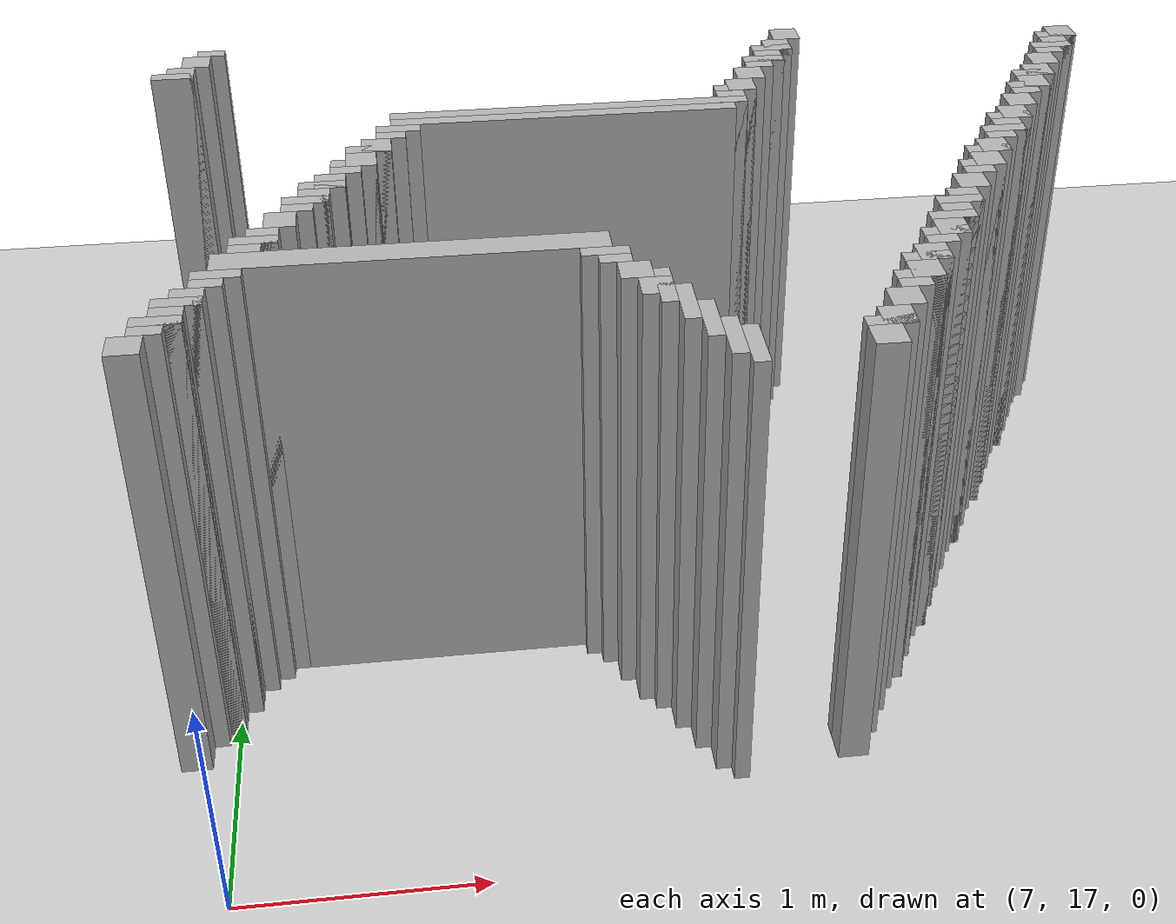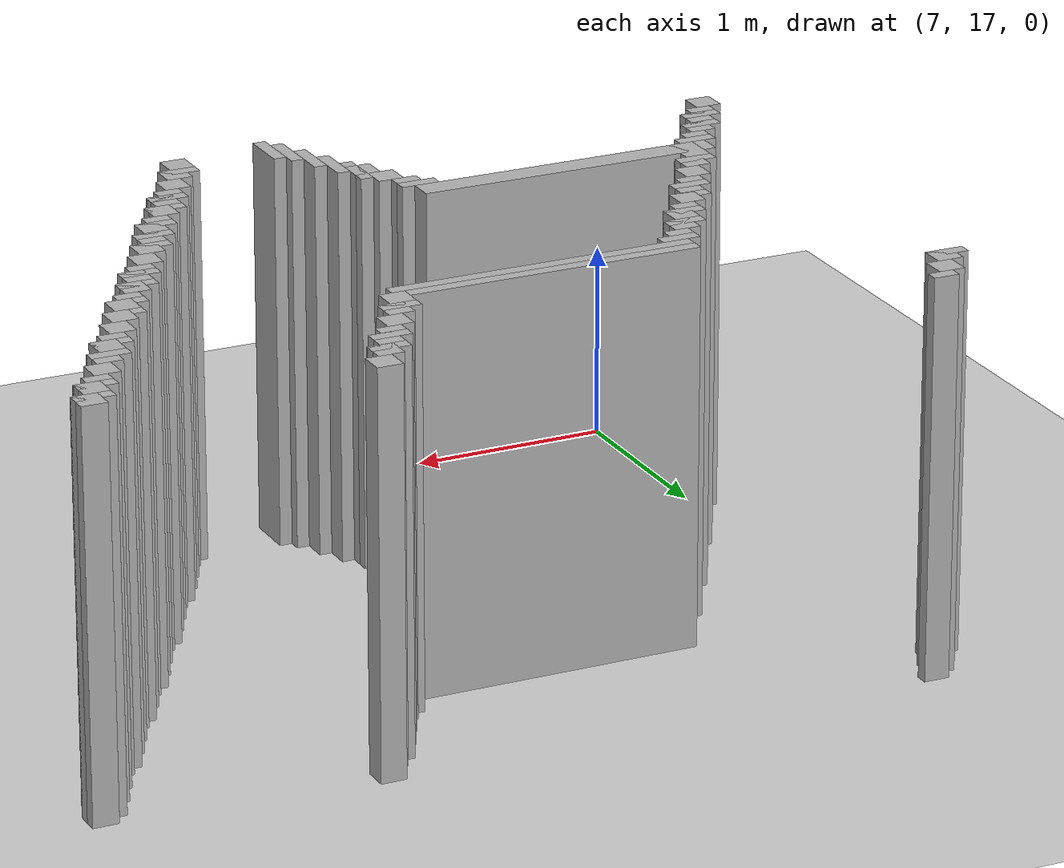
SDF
<sdf version="1.6">
 <world name="slam_world">
  <model name="ground_plane">
   <static>true</static>
   <link name="link">
    <collision name="collision">
     <geometry><plane><normal>0 0 1</normal><size>100 100</size></plane></geometry>
    </collision>
    <visual name="visual">
     <geometry><plane><normal>0 0 1</normal><size>100 100</size></plane></geometry>
     <material>
      <ambient>0.8 0.8 0.8 1</ambient>
      <diffuse>0.8 0.8 0.8 1</diffuse>
      <specular>0.8 0.8 0.8 1</specular>
     </material>
    </visual>
   </link>
  </model>
  <model name="wall_358">
   <static>true</static>
   <pose>6.957446808510638 20.457446808510635 1.0 0 0 0</pose>
   <link name="link">
    <collision name="collision">
     <geometry><box><size>0.1276595744680851 0.06382978723404255 2.0</size></box></geometry>
    </collision>
    <visual name="visual">
     <geometry><box><size>0.1276595744680851 0.06382978723404255 2.0</size></box></geometry>
     <material><ambient>0.5 0.5 0.5 1</ambient><diffuse>0.7 0.7 0.7 1</diffuse></material>
    </visual>
   </link>
  </model>
  <model name="wall_364">
   <static>true</static>
   <pose>6.8936170212765955 20.361702127659573 1.0 0 0 0</pose>
   <link name="link">
    <collision name="collision">
     <geometry><box><size>0.1276595744680851 0.1276595744680851 2.0</size></box></geometry>
    </collision>
    <visual name="visual">
     <geometry><box><size>0.1276595744680851 0.1276595744680851 2.0</size></box></geometry>
     <material><ambient>0.5 0.5 0.5 1</ambient><diffuse>0.7 0.7 0.7 1</diffuse></material>
    </visual>
   </link>
  </model>
  <model name="wall_365">
   <static>true</static>
   <pose>9.702127659574467 20.361702127659573 1.0 0 0 0</pose>
   <link name="link">
    <collision name="collision">
     <geometry><box><size>0.1276595744680851 0.1276595744680851 2.0</size></box></geometry>
    </collision>
    <visual name="visual">
     <geometry><box><size>0.1276595744680851 0.1276595744680851 2.0</size></box></geometry>
     <material><ambient>0.5 0.5 0.5 1</ambient><diffuse>0.7 0.7 0.7 1</diffuse></material>
    </visual>
   </link>
  </model>
  <model name="wall_372">
   <static>true</static>
   <pose>6.829787234042553 20.234042553191486 1.0 0 0 0</pose>
   <link name="link">
    <collision name="collision">
     <geometry><box><size>0.1276595744680851 0.1276595744680851 2.0</size></box></geometry>
    </collision>
    <visual name="visual">
     <geometry><box><size>0.1276595744680851 0.1276595744680851 2.0</size></box></geometry>
     <material><ambient>0.5 0.5 0.5 1</ambient><diffuse>0.7 0.7 0.7 1</diffuse></material>
    </visual>
   </link>
  </model>
  <model name="wall_373">
   <static>true</static>
   <pose>9.638297872340425 20.234042553191486 1.0 0 0 0</pose>
   <link name="link">
    <collision name="collision">
     <geometry><box><size>0.1276595744680851 0.1276595744680851 2.0</size></box></geometry>
    </collision>
    <visual name="visual">
     <geometry><box><size>0.1276595744680851 0.1276595744680851 2.0</size></box></geometry>
     <material><ambient>0.5 0.5 0.5 1</ambient><diffuse>0.7 0.7 0.7 1</diffuse></material>
    </visual>
   </link>
  </model>
  <model name="wall_374">
   <static>true</static>
   <pose>11.042553191489361 20.234042553191486 1.0 0 0 0</pose>
   <link name="link">
    <collision name="collision">
     <geometry><box><size>0.1276595744680851 0.1276595744680851 2.0</size></box></geometry>
    </collision>
    <visual name="visual">
     <geometry><box><size>0.1276595744680851 0.1276595744680851 2.0</size></box></geometry>
     <material><ambient>0.5 0.5 0.5 1</ambient><diffuse>0.7 0.7 0.7 1</diffuse></material>
    </visual>
   </link>
  </model>
  <model name="wall_380">
   <static>true</static>
   <pose>6.797872340425531 20.202127659574465 1.0 0 0 0</pose>
   <link name="link">
    <collision name="collision">
     <geometry><box><size>0.19148936170212766 0.06382978723404255 2.0</size></box></geometry>
    </collision>
    <visual name="visual">
     <geometry><box><size>0.19148936170212766 0.06382978723404255 2.0</size></box></geometry>
     <material><ambient>0.5 0.5 0.5 1</ambient><diffuse>0.7 0.7 0.7 1</diffuse></material>
    </visual>
   </link>
  </model>
  <model name="wall_381">
   <static>true</static>
   <pose>9.606382978723403 20.202127659574465 1.0 0 0 0</pose>
   <link name="link">
    <collision name="collision">
     <geometry><box><size>0.19148936170212766 0.06382978723404255 2.0</size></box></geometry>
    </collision>
    <visual name="visual">
     <geometry><box><size>0.19148936170212766 0.06382978723404255 2.0</size></box></geometry>
     <material><ambient>0.5 0.5 0.5 1</ambient><diffuse>0.7 0.7 0.7 1</diffuse></material>
    </visual>
   </link>
  </model>
  <model name="wall_382">
   <static>true</static>
   <pose>11.01063829787234 20.202127659574465 1.0 0 0 0</pose>
   <link name="link">
    <collision name="collision">
     <geometry><box><size>0.19148936170212766 0.06382978723404255 2.0</size></box></geometry>
    </collision>
    <visual name="visual">
     <geometry><box><size>0.19148936170212766 0.06382978723404255 2.0</size></box></geometry>
     <material><ambient>0.5 0.5 0.5 1</ambient><diffuse>0.7 0.7 0.7 1</diffuse></material>
    </visual>
   </link>
  </model>
  <model name="wall_387">
   <static>true</static>
   <pose>9.574468085106382 20.106382978723403 1.0 0 0 0</pose>
   <link name="link">
    <collision name="collision">
     <geometry><box><size>0.1276595744680851 0.1276595744680851 2.0</size></box></geometry>
    </collision>
    <visual name="visual">
     <geometry><box><size>0.1276595744680851 0.1276595744680851 2.0</size></box></geometry>
     <material><ambient>0.5 0.5 0.5 1</ambient><diffuse>0.7 0.7 0.7 1</diffuse></material>
    </visual>
   </link>
  </model>
  <model name="wall_388">
   <static>true</static>
   <pose>10.978723404255318 20.106382978723403 1.0 0 0 0</pose>
   <link name="link">
    <collision name="collision">
     <geometry><box><size>0.1276595744680851 0.1276595744680851 2.0</size></box></geometry>
    </collision>
    <visual name="visual">
     <geometry><box><size>0.1276595744680851 0.1276595744680851 2.0</size></box></geometry>
     <material><ambient>0.5 0.5 0.5 1</ambient><diffuse>0.7 0.7 0.7 1</diffuse></material>
    </visual>
   </link>
  </model>
  <model name="wall_393">
   <static>true</static>
   <pose>9.542553191489361 20.074468085106382 1.0 0 0 0</pose>
   <link name="link">
    <collision name="collision">
     <geometry><box><size>0.19148936170212766 0.06382978723404255 2.0</size></box></geometry>
    </collision>
    <visual name="visual">
     <geometry><box><size>0.19148936170212766 0.06382978723404255 2.0</size></box></geometry>
     <material><ambient>0.5 0.5 0.5 1</ambient><diffuse>0.7 0.7 0.7 1</diffuse></material>
    </visual>
   </link>
  </model>
  <model name="wall_394">
   <static>true</static>
   <pose>10.946808510638297 20.074468085106382 1.0 0 0 0</pose>
   <link name="link">
    <collision name="collision">
     <geometry><box><size>0.19148936170212766 0.06382978723404255 2.0</size></box></geometry>
    </collision>
    <visual name="visual">
     <geometry><box><size>0.19148936170212766 0.06382978723404255 2.0</size></box></geometry>
     <material><ambient>0.5 0.5 0.5 1</ambient><diffuse>0.7 0.7 0.7 1</diffuse></material>
    </visual>
   </link>
  </model>
  <model name="wall_399">
   <static>true</static>
   <pose>9.51063829787234 20.01063829787234 1.0 0 0 0</pose>
   <link name="link">
    <collision name="collision">
     <geometry><box><size>0.1276595744680851 0.06382978723404255 2.0</size></box></geometry>
    </collision>
    <visual name="visual">
     <geometry><box><size>0.1276595744680851 0.06382978723404255 2.0</size></box></geometry>
     <material><ambient>0.5 0.5 0.5 1</ambient><diffuse>0.7 0.7 0.7 1</diffuse></material>
    </visual>
   </link>
  </model>
  <model name="wall_400">
   <static>true</static>
   <pose>10.914893617021276 20.01063829787234 1.0 0 0 0</pose>
   <link name="link">
    <collision name="collision">
     <geometry><box><size>0.1276595744680851 0.06382978723404255 2.0</size></box></geometry>
    </collision>
    <visual name="visual">
     <geometry><box><size>0.1276595744680851 0.06382978723404255 2.0</size></box></geometry>
     <material><ambient>0.5 0.5 0.5 1</ambient><diffuse>0.7 0.7 0.7 1</diffuse></material>
    </visual>
   </link>
  </model>
  <model name="wall_405">
   <static>true</static>
   <pose>9.446808510638297 19.914893617021274 1.0 0 0 0</pose>
   <link name="link">
    <collision name="collision">
     <geometry><box><size>0.1276595744680851 0.1276595744680851 2.0</size></box></geometry>
    </collision>
    <visual name="visual">
     <geometry><box><size>0.1276595744680851 0.1276595744680851 2.0</size></box></geometry>
     <material><ambient>0.5 0.5 0.5 1</ambient><diffuse>0.7 0.7 0.7 1</diffuse></material>
    </visual>
   </link>
  </model>
  <model name="wall_406">
   <static>true</static>
   <pose>10.851063829787233 19.914893617021274 1.0 0 0 0</pose>
   <link name="link">
    <collision name="collision">
     <geometry><box><size>0.1276595744680851 0.1276595744680851 2.0</size></box></geometry>
    </collision>
    <visual name="visual">
     <geometry><box><size>0.1276595744680851 0.1276595744680851 2.0</size></box></geometry>
     <material><ambient>0.5 0.5 0.5 1</ambient><diffuse>0.7 0.7 0.7 1</diffuse></material>
    </visual>
   </link>
  </model>
  <model name="wall_413">
   <static>true</static>
   <pose>9.382978723404255 19.78723404255319 1.0 0 0 0</pose>
   <link name="link">
    <collision name="collision">
     <geometry><box><size>0.1276595744680851 0.1276595744680851 2.0</size></box></geometry>
    </collision>
    <visual name="visual">
     <geometry><box><size>0.1276595744680851 0.1276595744680851 2.0</size></box></geometry>
     <material><ambient>0.5 0.5 0.5 1</ambient><diffuse>0.7 0.7 0.7 1</diffuse></material>
    </visual>
   </link>
  </model>
  <model name="wall_414">
   <static>true</static>
   <pose>10.787234042553191 19.78723404255319 1.0 0 0 0</pose>
   <link name="link">
    <collision name="collision">
     <geometry><box><size>0.1276595744680851 0.1276595744680851 2.0</size></box></geometry>
    </collision>
    <visual name="visual">
     <geometry><box><size>0.1276595744680851 0.1276595744680851 2.0</size></box></geometry>
     <material><ambient>0.5 0.5 0.5 1</ambient><diffuse>0.7 0.7 0.7 1</diffuse></material>
    </visual>
   </link>
  </model>
  <model name="wall_421">
   <static>true</static>
   <pose>9.351063829787233 19.75531914893617 1.0 0 0 0</pose>
   <link name="link">
    <collision name="collision">
     <geometry><box><size>0.19148936170212766 0.06382978723404255 2.0</size></box></geometry>
    </collision>
    <visual name="visual">
     <geometry><box><size>0.19148936170212766 0.06382978723404255 2.0</size></box></geometry>
     <material><ambient>0.5 0.5 0.5 1</ambient><diffuse>0.7 0.7 0.7 1</diffuse></material>
    </visual>
   </link>
  </model>
  <model name="wall_422">
   <static>true</static>
   <pose>10.75531914893617 19.75531914893617 1.0 0 0 0</pose>
   <link name="link">
    <collision name="collision">
     <geometry><box><size>0.19148936170212766 0.06382978723404255 2.0</size></box></geometry>
    </collision>
    <visual name="visual">
     <geometry><box><size>0.19148936170212766 0.06382978723404255 2.0</size></box></geometry>
     <material><ambient>0.5 0.5 0.5 1</ambient><diffuse>0.7 0.7 0.7 1</diffuse></material>
    </visual>
   </link>
  </model>
  <model name="wall_427">
   <static>true</static>
   <pose>9.319148936170212 19.659574468085104 1.0 0 0 0</pose>
   <link name="link">
    <collision name="collision">
     <geometry><box><size>0.1276595744680851 0.1276595744680851 2.0</size></box></geometry>
    </collision>
    <visual name="visual">
     <geometry><box><size>0.1276595744680851 0.1276595744680851 2.0</size></box></geometry>
     <material><ambient>0.5 0.5 0.5 1</ambient><diffuse>0.7 0.7 0.7 1</diffuse></material>
    </visual>
   </link>
  </model>
  <model name="wall_428">
   <static>true</static>
   <pose>10.723404255319148 19.659574468085104 1.0 0 0 0</pose>
   <link name="link">
    <collision name="collision">
     <geometry><box><size>0.1276595744680851 0.1276595744680851 2.0</size></box></geometry>
    </collision>
    <visual name="visual">
     <geometry><box><size>0.1276595744680851 0.1276595744680851 2.0</size></box></geometry>
     <material><ambient>0.5 0.5 0.5 1</ambient><diffuse>0.7 0.7 0.7 1</diffuse></material>
    </visual>
   </link>
  </model>
  <model name="wall_434">
   <static>true</static>
   <pose>8.585106382978722 19.627659574468083 1.0 0 0 0</pose>
   <link name="link">
    <collision name="collision">
     <geometry><box><size>1.5957446808510638 0.06382978723404255 2.0</size></box></geometry>
    </collision>
    <visual name="visual">
     <geometry><box><size>1.5957446808510638 0.06382978723404255 2.0</size></box></geometry>
     <material><ambient>0.5 0.5 0.5 1</ambient><diffuse>0.7 0.7 0.7 1</diffuse></material>
    </visual>
   </link>
  </model>
  <model name="wall_435">
   <static>true</static>
   <pose>10.691489361702127 19.627659574468083 1.0 0 0 0</pose>
   <link name="link">
    <collision name="collision">
     <geometry><box><size>0.19148936170212766 0.06382978723404255 2.0</size></box></geometry>
    </collision>
    <visual name="visual">
     <geometry><box><size>0.19148936170212766 0.06382978723404255 2.0</size></box></geometry>
     <material><ambient>0.5 0.5 0.5 1</ambient><diffuse>0.7 0.7 0.7 1</diffuse></material>
    </visual>
   </link>
  </model>
  <model name="wall_441">
   <static>true</static>
   <pose>8.553191489361701 19.56382978723404 1.0 0 0 0</pose>
   <link name="link">
    <collision name="collision">
     <geometry><box><size>1.5319148936170213 0.06382978723404255 2.0</size></box></geometry>
    </collision>
    <visual name="visual">
     <geometry><box><size>1.5319148936170213 0.06382978723404255 2.0</size></box></geometry>
     <material><ambient>0.5 0.5 0.5 1</ambient><diffuse>0.7 0.7 0.7 1</diffuse></material>
    </visual>
   </link>
  </model>
  <model name="wall_442">
   <static>true</static>
   <pose>10.659574468085106 19.56382978723404 1.0 0 0 0</pose>
   <link name="link">
    <collision name="collision">
     <geometry><box><size>0.1276595744680851 0.06382978723404255 2.0</size></box></geometry>
    </collision>
    <visual name="visual">
     <geometry><box><size>0.1276595744680851 0.06382978723404255 2.0</size></box></geometry>
     <material><ambient>0.5 0.5 0.5 1</ambient><diffuse>0.7 0.7 0.7 1</diffuse></material>
    </visual>
   </link>
  </model>
  <model name="wall_446">
   <static>true</static>
   <pose>7.819148936170212 19.5 1.0 0 0 0</pose>
   <link name="link">
    <collision name="collision">
     <geometry><box><size>0.19148936170212766 0.06382978723404255 2.0</size></box></geometry>
    </collision>
    <visual name="visual">
     <geometry><box><size>0.19148936170212766 0.06382978723404255 2.0</size></box></geometry>
     <material><ambient>0.5 0.5 0.5 1</ambient><diffuse>0.7 0.7 0.7 1</diffuse></material>
    </visual>
   </link>
  </model>
  <model name="wall_447">
   <static>true</static>
   <pose>10.595744680851062 19.468085106382976 1.0 0 0 0</pose>
   <link name="link">
    <collision name="collision">
     <geometry><box><size>0.1276595744680851 0.1276595744680851 2.0</size></box></geometry>
    </collision>
    <visual name="visual">
     <geometry><box><size>0.1276595744680851 0.1276595744680851 2.0</size></box></geometry>
     <material><ambient>0.5 0.5 0.5 1</ambient><diffuse>0.7 0.7 0.7 1</diffuse></material>
    </visual>
   </link>
  </model>
  <model name="wall_451">
   <static>true</static>
   <pose>7.787234042553191 19.436170212765955 1.0 0 0 0</pose>
   <link name="link">
    <collision name="collision">
     <geometry><box><size>0.1276595744680851 0.06382978723404255 2.0</size></box></geometry>
    </collision>
    <visual name="visual">
     <geometry><box><size>0.1276595744680851 0.06382978723404255 2.0</size></box></geometry>
     <material><ambient>0.5 0.5 0.5 1</ambient><diffuse>0.7 0.7 0.7 1</diffuse></material>
    </visual>
   </link>
  </model>
  <model name="wall_457">
   <static>true</static>
   <pose>7.723404255319148 19.340425531914892 1.0 0 0 0</pose>
   <link name="link">
    <collision name="collision">
     <geometry><box><size>0.1276595744680851 0.1276595744680851 2.0</size></box></geometry>
    </collision>
    <visual name="visual">
     <geometry><box><size>0.1276595744680851 0.1276595744680851 2.0</size></box></geometry>
     <material><ambient>0.5 0.5 0.5 1</ambient><diffuse>0.7 0.7 0.7 1</diffuse></material>
    </visual>
   </link>
  </model>
  <model name="wall_458">
   <static>true</static>
   <pose>10.53191489361702 19.340425531914892 1.0 0 0 0</pose>
   <link name="link">
    <collision name="collision">
     <geometry><box><size>0.1276595744680851 0.1276595744680851 2.0</size></box></geometry>
    </collision>
    <visual name="visual">
     <geometry><box><size>0.1276595744680851 0.1276595744680851 2.0</size></box></geometry>
     <material><ambient>0.5 0.5 0.5 1</ambient><diffuse>0.7 0.7 0.7 1</diffuse></material>
    </visual>
   </link>
  </model>
  <model name="wall_467">
   <static>true</static>
   <pose>7.691489361702127 19.30851063829787 1.0 0 0 0</pose>
   <link name="link">
    <collision name="collision">
     <geometry><box><size>0.19148936170212766 0.06382978723404255 2.0</size></box></geometry>
    </collision>
    <visual name="visual">
     <geometry><box><size>0.19148936170212766 0.06382978723404255 2.0</size></box></geometry>
     <material><ambient>0.5 0.5 0.5 1</ambient><diffuse>0.7 0.7 0.7 1</diffuse></material>
    </visual>
   </link>
  </model>
  <model name="wall_468">
   <static>true</static>
   <pose>10.5 19.30851063829787 1.0 0 0 0</pose>
   <link name="link">
    <collision name="collision">
     <geometry><box><size>0.19148936170212766 0.06382978723404255 2.0</size></box></geometry>
    </collision>
    <visual name="visual">
     <geometry><box><size>0.19148936170212766 0.06382978723404255 2.0</size></box></geometry>
     <material><ambient>0.5 0.5 0.5 1</ambient><diffuse>0.7 0.7 0.7 1</diffuse></material>
    </visual>
   </link>
  </model>
  <model name="wall_477">
   <static>true</static>
   <pose>7.659574468085106 19.212765957446805 1.0 0 0 0</pose>
   <link name="link">
    <collision name="collision">
     <geometry><box><size>0.1276595744680851 0.1276595744680851 2.0</size></box></geometry>
    </collision>
    <visual name="visual">
     <geometry><box><size>0.1276595744680851 0.1276595744680851 2.0</size></box></geometry>
     <material><ambient>0.5 0.5 0.5 1</ambient><diffuse>0.7 0.7 0.7 1</diffuse></material>
    </visual>
   </link>
  </model>
  <model name="wall_478">
   <static>true</static>
   <pose>10.468085106382977 19.212765957446805 1.0 0 0 0</pose>
   <link name="link">
    <collision name="collision">
     <geometry><box><size>0.1276595744680851 0.1276595744680851 2.0</size></box></geometry>
    </collision>
    <visual name="visual">
     <geometry><box><size>0.1276595744680851 0.1276595744680851 2.0</size></box></geometry>
     <material><ambient>0.5 0.5 0.5 1</ambient><diffuse>0.7 0.7 0.7 1</diffuse></material>
    </visual>
   </link>
  </model>
  <model name="wall_487">
   <static>true</static>
   <pose>7.627659574468084 19.180851063829785 1.0 0 0 0</pose>
   <link name="link">
    <collision name="collision">
     <geometry><box><size>0.19148936170212766 0.06382978723404255 2.0</size></box></geometry>
    </collision>
    <visual name="visual">
     <geometry><box><size>0.19148936170212766 0.06382978723404255 2.0</size></box></geometry>
     <material><ambient>0.5 0.5 0.5 1</ambient><diffuse>0.7 0.7 0.7 1</diffuse></material>
    </visual>
   </link>
  </model>
  <model name="wall_488">
   <static>true</static>
   <pose>10.436170212765957 19.180851063829785 1.0 0 0 0</pose>
   <link name="link">
    <collision name="collision">
     <geometry><box><size>0.19148936170212766 0.06382978723404255 2.0</size></box></geometry>
    </collision>
    <visual name="visual">
     <geometry><box><size>0.19148936170212766 0.06382978723404255 2.0</size></box></geometry>
     <material><ambient>0.5 0.5 0.5 1</ambient><diffuse>0.7 0.7 0.7 1</diffuse></material>
    </visual>
   </link>
  </model>
  <model name="wall_494">
   <static>true</static>
   <pose>7.595744680851063 19.117021276595743 1.0 0 0 0</pose>
   <link name="link">
    <collision name="collision">
     <geometry><box><size>0.1276595744680851 0.06382978723404255 2.0</size></box></geometry>
    </collision>
    <visual name="visual">
     <geometry><box><size>0.1276595744680851 0.06382978723404255 2.0</size></box></geometry>
     <material><ambient>0.5 0.5 0.5 1</ambient><diffuse>0.7 0.7 0.7 1</diffuse></material>
    </visual>
   </link>
  </model>
  <model name="wall_495">
   <static>true</static>
   <pose>10.404255319148936 19.117021276595743 1.0 0 0 0</pose>
   <link name="link">
    <collision name="collision">
     <geometry><box><size>0.1276595744680851 0.06382978723404255 2.0</size></box></geometry>
    </collision>
    <visual name="visual">
     <geometry><box><size>0.1276595744680851 0.06382978723404255 2.0</size></box></geometry>
     <material><ambient>0.5 0.5 0.5 1</ambient><diffuse>0.7 0.7 0.7 1</diffuse></material>
    </visual>
   </link>
  </model>
  <model name="wall_503">
   <static>true</static>
   <pose>7.531914893617021 19.02127659574468 1.0 0 0 0</pose>
   <link name="link">
    <collision name="collision">
     <geometry><box><size>0.1276595744680851 0.1276595744680851 2.0</size></box></geometry>
    </collision>
    <visual name="visual">
     <geometry><box><size>0.1276595744680851 0.1276595744680851 2.0</size></box></geometry>
     <material><ambient>0.5 0.5 0.5 1</ambient><diffuse>0.7 0.7 0.7 1</diffuse></material>
    </visual>
   </link>
  </model>
  <model name="wall_504">
   <static>true</static>
   <pose>10.340425531914892 19.02127659574468 1.0 0 0 0</pose>
   <link name="link">
    <collision name="collision">
     <geometry><box><size>0.1276595744680851 0.1276595744680851 2.0</size></box></geometry>
    </collision>
    <visual name="visual">
     <geometry><box><size>0.1276595744680851 0.1276595744680851 2.0</size></box></geometry>
     <material><ambient>0.5 0.5 0.5 1</ambient><diffuse>0.7 0.7 0.7 1</diffuse></material>
    </visual>
   </link>
  </model>
  <model name="wall_513">
   <static>true</static>
   <pose>7.499999999999999 18.98936170212766 1.0 0 0 0</pose>
   <link name="link">
    <collision name="collision">
     <geometry><box><size>0.19148936170212766 0.06382978723404255 2.0</size></box></geometry>
    </collision>
    <visual name="visual">
     <geometry><box><size>0.19148936170212766 0.06382978723404255 2.0</size></box></geometry>
     <material><ambient>0.5 0.5 0.5 1</ambient><diffuse>0.7 0.7 0.7 1</diffuse></material>
    </visual>
   </link>
  </model>
  <model name="wall_514">
   <static>true</static>
   <pose>10.308510638297872 18.98936170212766 1.0 0 0 0</pose>
   <link name="link">
    <collision name="collision">
     <geometry><box><size>0.19148936170212766 0.06382978723404255 2.0</size></box></geometry>
    </collision>
    <visual name="visual">
     <geometry><box><size>0.19148936170212766 0.06382978723404255 2.0</size></box></geometry>
     <material><ambient>0.5 0.5 0.5 1</ambient><diffuse>0.7 0.7 0.7 1</diffuse></material>
    </visual>
   </link>
  </model>
  <model name="wall_520">
   <static>true</static>
   <pose>7.468085106382978 18.893617021276594 1.0 0 0 0</pose>
   <link name="link">
    <collision name="collision">
     <geometry><box><size>0.1276595744680851 0.1276595744680851 2.0</size></box></geometry>
    </collision>
    <visual name="visual">
     <geometry><box><size>0.1276595744680851 0.1276595744680851 2.0</size></box></geometry>
     <material><ambient>0.5 0.5 0.5 1</ambient><diffuse>0.7 0.7 0.7 1</diffuse></material>
    </visual>
   </link>
  </model>
  <model name="wall_521">
   <static>true</static>
   <pose>10.27659574468085 18.893617021276594 1.0 0 0 0</pose>
   <link name="link">
    <collision name="collision">
     <geometry><box><size>0.1276595744680851 0.1276595744680851 2.0</size></box></geometry>
    </collision>
    <visual name="visual">
     <geometry><box><size>0.1276595744680851 0.1276595744680851 2.0</size></box></geometry>
     <material><ambient>0.5 0.5 0.5 1</ambient><diffuse>0.7 0.7 0.7 1</diffuse></material>
    </visual>
   </link>
  </model>
  <model name="wall_529">
   <static>true</static>
   <pose>7.436170212765957 18.861702127659573 1.0 0 0 0</pose>
   <link name="link">
    <collision name="collision">
     <geometry><box><size>0.19148936170212766 0.06382978723404255 2.0</size></box></geometry>
    </collision>
    <visual name="visual">
     <geometry><box><size>0.19148936170212766 0.06382978723404255 2.0</size></box></geometry>
     <material><ambient>0.5 0.5 0.5 1</ambient><diffuse>0.7 0.7 0.7 1</diffuse></material>
    </visual>
   </link>
  </model>
  <model name="wall_530">
   <static>true</static>
   <pose>10.24468085106383 18.861702127659573 1.0 0 0 0</pose>
   <link name="link">
    <collision name="collision">
     <geometry><box><size>0.19148936170212766 0.06382978723404255 2.0</size></box></geometry>
    </collision>
    <visual name="visual">
     <geometry><box><size>0.19148936170212766 0.06382978723404255 2.0</size></box></geometry>
     <material><ambient>0.5 0.5 0.5 1</ambient><diffuse>0.7 0.7 0.7 1</diffuse></material>
    </visual>
   </link>
  </model>
  <model name="wall_536">
   <static>true</static>
   <pose>7.404255319148936 18.79787234042553 1.0 0 0 0</pose>
   <link name="link">
    <collision name="collision">
     <geometry><box><size>0.1276595744680851 0.06382978723404255 2.0</size></box></geometry>
    </collision>
    <visual name="visual">
     <geometry><box><size>0.1276595744680851 0.06382978723404255 2.0</size></box></geometry>
     <material><ambient>0.5 0.5 0.5 1</ambient><diffuse>0.7 0.7 0.7 1</diffuse></material>
    </visual>
   </link>
  </model>
  <model name="wall_537">
   <static>true</static>
   <pose>10.212765957446807 18.79787234042553 1.0 0 0 0</pose>
   <link name="link">
    <collision name="collision">
     <geometry><box><size>0.1276595744680851 0.06382978723404255 2.0</size></box></geometry>
    </collision>
    <visual name="visual">
     <geometry><box><size>0.1276595744680851 0.06382978723404255 2.0</size></box></geometry>
     <material><ambient>0.5 0.5 0.5 1</ambient><diffuse>0.7 0.7 0.7 1</diffuse></material>
    </visual>
   </link>
  </model>
  <model name="wall_545">
   <static>true</static>
   <pose>7.340425531914893 18.702127659574465 1.0 0 0 0</pose>
   <link name="link">
    <collision name="collision">
     <geometry><box><size>0.1276595744680851 0.1276595744680851 2.0</size></box></geometry>
    </collision>
    <visual name="visual">
     <geometry><box><size>0.1276595744680851 0.1276595744680851 2.0</size></box></geometry>
     <material><ambient>0.5 0.5 0.5 1</ambient><diffuse>0.7 0.7 0.7 1</diffuse></material>
    </visual>
   </link>
  </model>
  <model name="wall_546">
   <static>true</static>
   <pose>10.148936170212766 18.702127659574465 1.0 0 0 0</pose>
   <link name="link">
    <collision name="collision">
     <geometry><box><size>0.1276595744680851 0.1276595744680851 2.0</size></box></geometry>
    </collision>
    <visual name="visual">
     <geometry><box><size>0.1276595744680851 0.1276595744680851 2.0</size></box></geometry>
     <material><ambient>0.5 0.5 0.5 1</ambient><diffuse>0.7 0.7 0.7 1</diffuse></material>
    </visual>
   </link>
  </model>
  <model name="wall_555">
   <static>true</static>
   <pose>7.276595744680851 18.574468085106382 1.0 0 0 0</pose>
   <link name="link">
    <collision name="collision">
     <geometry><box><size>0.1276595744680851 0.1276595744680851 2.0</size></box></geometry>
    </collision>
    <visual name="visual">
     <geometry><box><size>0.1276595744680851 0.1276595744680851 2.0</size></box></geometry>
     <material><ambient>0.5 0.5 0.5 1</ambient><diffuse>0.7 0.7 0.7 1</diffuse></material>
    </visual>
   </link>
  </model>
  <model name="wall_556">
   <static>true</static>
   <pose>10.085106382978722 18.574468085106382 1.0 0 0 0</pose>
   <link name="link">
    <collision name="collision">
     <geometry><box><size>0.1276595744680851 0.1276595744680851 2.0</size></box></geometry>
    </collision>
    <visual name="visual">
     <geometry><box><size>0.1276595744680851 0.1276595744680851 2.0</size></box></geometry>
     <material><ambient>0.5 0.5 0.5 1</ambient><diffuse>0.7 0.7 0.7 1</diffuse></material>
    </visual>
   </link>
  </model>
  <model name="wall_564">
   <static>true</static>
   <pose>7.244680851063829 18.54255319148936 1.0 0 0 0</pose>
   <link name="link">
    <collision name="collision">
     <geometry><box><size>0.19148936170212766 0.06382978723404255 2.0</size></box></geometry>
    </collision>
    <visual name="visual">
     <geometry><box><size>0.19148936170212766 0.06382978723404255 2.0</size></box></geometry>
     <material><ambient>0.5 0.5 0.5 1</ambient><diffuse>0.7 0.7 0.7 1</diffuse></material>
    </visual>
   </link>
  </model>
  <model name="wall_565">
   <static>true</static>
   <pose>10.053191489361701 18.54255319148936 1.0 0 0 0</pose>
   <link name="link">
    <collision name="collision">
     <geometry><box><size>0.19148936170212766 0.06382978723404255 2.0</size></box></geometry>
    </collision>
    <visual name="visual">
     <geometry><box><size>0.19148936170212766 0.06382978723404255 2.0</size></box></geometry>
     <material><ambient>0.5 0.5 0.5 1</ambient><diffuse>0.7 0.7 0.7 1</diffuse></material>
    </visual>
   </link>
  </model>
  <model name="wall_570">
   <static>true</static>
   <pose>7.212765957446808 18.414893617021274 1.0 0 0 0</pose>
   <link name="link">
    <collision name="collision">
     <geometry><box><size>0.1276595744680851 0.19148936170212766 2.0</size></box></geometry>
    </collision>
    <visual name="visual">
     <geometry><box><size>0.1276595744680851 0.19148936170212766 2.0</size></box></geometry>
     <material><ambient>0.5 0.5 0.5 1</ambient><diffuse>0.7 0.7 0.7 1</diffuse></material>
    </visual>
   </link>
  </model>
  <model name="wall_571">
   <static>true</static>
   <pose>10.02127659574468 18.446808510638295 1.0 0 0 0</pose>
   <link name="link">
    <collision name="collision">
     <geometry><box><size>0.1276595744680851 0.1276595744680851 2.0</size></box></geometry>
    </collision>
    <visual name="visual">
     <geometry><box><size>0.1276595744680851 0.1276595744680851 2.0</size></box></geometry>
     <material><ambient>0.5 0.5 0.5 1</ambient><diffuse>0.7 0.7 0.7 1</diffuse></material>
    </visual>
   </link>
  </model>
  <model name="wall_577">
   <static>true</static>
   <pose>7.8510638297872335 18.382978723404253 1.0 0 0 0</pose>
   <link name="link">
    <collision name="collision">
     <geometry><box><size>1.5319148936170213 0.1276595744680851 2.0</size></box></geometry>
    </collision>
    <visual name="visual">
     <geometry><box><size>1.5319148936170213 0.1276595744680851 2.0</size></box></geometry>
     <material><ambient>0.5 0.5 0.5 1</ambient><diffuse>0.7 0.7 0.7 1</diffuse></material>
    </visual>
   </link>
  </model>
  <model name="wall_578">
   <static>true</static>
   <pose>9.989361702127658 18.414893617021274 1.0 0 0 0</pose>
   <link name="link">
    <collision name="collision">
     <geometry><box><size>0.19148936170212766 0.06382978723404255 2.0</size></box></geometry>
    </collision>
    <visual name="visual">
     <geometry><box><size>0.19148936170212766 0.06382978723404255 2.0</size></box></geometry>
     <material><ambient>0.5 0.5 0.5 1</ambient><diffuse>0.7 0.7 0.7 1</diffuse></material>
    </visual>
   </link>
  </model>
  <model name="wall_583">
   <static>true</static>
   <pose>9.957446808510637 18.319148936170212 1.0 0 0 0</pose>
   <link name="link">
    <collision name="collision">
     <geometry><box><size>0.1276595744680851 0.1276595744680851 2.0</size></box></geometry>
    </collision>
    <visual name="visual">
     <geometry><box><size>0.1276595744680851 0.1276595744680851 2.0</size></box></geometry>
     <material><ambient>0.5 0.5 0.5 1</ambient><diffuse>0.7 0.7 0.7 1</diffuse></material>
    </visual>
   </link>
  </model>
  <model name="wall_589">
   <static>true</static>
   <pose>7.117021276595744 18.28723404255319 1.0 0 0 0</pose>
   <link name="link">
    <collision name="collision">
     <geometry><box><size>0.19148936170212766 0.06382978723404255 2.0</size></box></geometry>
    </collision>
    <visual name="visual">
     <geometry><box><size>0.19148936170212766 0.06382978723404255 2.0</size></box></geometry>
     <material><ambient>0.5 0.5 0.5 1</ambient><diffuse>0.7 0.7 0.7 1</diffuse></material>
    </visual>
   </link>
  </model>
  <model name="wall_590">
   <static>true</static>
   <pose>8.585106382978722 18.28723404255319 1.0 0 0 0</pose>
   <link name="link">
    <collision name="collision">
     <geometry><box><size>0.19148936170212766 0.06382978723404255 2.0</size></box></geometry>
    </collision>
    <visual name="visual">
     <geometry><box><size>0.19148936170212766 0.06382978723404255 2.0</size></box></geometry>
     <material><ambient>0.5 0.5 0.5 1</ambient><diffuse>0.7 0.7 0.7 1</diffuse></material>
    </visual>
   </link>
  </model>
  <model name="wall_591">
   <static>true</static>
   <pose>9.925531914893616 18.28723404255319 1.0 0 0 0</pose>
   <link name="link">
    <collision name="collision">
     <geometry><box><size>0.19148936170212766 0.06382978723404255 2.0</size></box></geometry>
    </collision>
    <visual name="visual">
     <geometry><box><size>0.19148936170212766 0.06382978723404255 2.0</size></box></geometry>
     <material><ambient>0.5 0.5 0.5 1</ambient><diffuse>0.7 0.7 0.7 1</diffuse></material>
    </visual>
   </link>
  </model>
  <model name="wall_595">
   <static>true</static>
   <pose>7.085106382978723 18.223404255319146 1.0 0 0 0</pose>
   <link name="link">
    <collision name="collision">
     <geometry><box><size>0.1276595744680851 0.06382978723404255 2.0</size></box></geometry>
    </collision>
    <visual name="visual">
     <geometry><box><size>0.1276595744680851 0.06382978723404255 2.0</size></box></geometry>
     <material><ambient>0.5 0.5 0.5 1</ambient><diffuse>0.7 0.7 0.7 1</diffuse></material>
    </visual>
   </link>
  </model>
  <model name="wall_596">
   <static>true</static>
   <pose>8.617021276595745 18.223404255319146 1.0 0 0 0</pose>
   <link name="link">
    <collision name="collision">
     <geometry><box><size>0.1276595744680851 0.06382978723404255 2.0</size></box></geometry>
    </collision>
    <visual name="visual">
     <geometry><box><size>0.1276595744680851 0.06382978723404255 2.0</size></box></geometry>
     <material><ambient>0.5 0.5 0.5 1</ambient><diffuse>0.7 0.7 0.7 1</diffuse></material>
    </visual>
   </link>
  </model>
  <model name="wall_597">
   <static>true</static>
   <pose>9.893617021276595 18.223404255319146 1.0 0 0 0</pose>
   <link name="link">
    <collision name="collision">
     <geometry><box><size>0.1276595744680851 0.06382978723404255 2.0</size></box></geometry>
    </collision>
    <visual name="visual">
     <geometry><box><size>0.1276595744680851 0.06382978723404255 2.0</size></box></geometry>
     <material><ambient>0.5 0.5 0.5 1</ambient><diffuse>0.7 0.7 0.7 1</diffuse></material>
    </visual>
   </link>
  </model>
  <model name="wall_604">
   <static>true</static>
   <pose>7.0212765957446805 18.127659574468083 1.0 0 0 0</pose>
   <link name="link">
    <collision name="collision">
     <geometry><box><size>0.1276595744680851 0.1276595744680851 2.0</size></box></geometry>
    </collision>
    <visual name="visual">
     <geometry><box><size>0.1276595744680851 0.1276595744680851 2.0</size></box></geometry>
     <material><ambient>0.5 0.5 0.5 1</ambient><diffuse>0.7 0.7 0.7 1</diffuse></material>
    </visual>
   </link>
  </model>
  <model name="wall_605">
   <static>true</static>
   <pose>8.680851063829786 18.127659574468083 1.0 0 0 0</pose>
   <link name="link">
    <collision name="collision">
     <geometry><box><size>0.1276595744680851 0.1276595744680851 2.0</size></box></geometry>
    </collision>
    <visual name="visual">
     <geometry><box><size>0.1276595744680851 0.1276595744680851 2.0</size></box></geometry>
     <material><ambient>0.5 0.5 0.5 1</ambient><diffuse>0.7 0.7 0.7 1</diffuse></material>
    </visual>
   </link>
  </model>
  <model name="wall_606">
   <static>true</static>
   <pose>9.829787234042552 18.127659574468083 1.0 0 0 0</pose>
   <link name="link">
    <collision name="collision">
     <geometry><box><size>0.1276595744680851 0.1276595744680851 2.0</size></box></geometry>
    </collision>
    <visual name="visual">
     <geometry><box><size>0.1276595744680851 0.1276595744680851 2.0</size></box></geometry>
     <material><ambient>0.5 0.5 0.5 1</ambient><diffuse>0.7 0.7 0.7 1</diffuse></material>
    </visual>
   </link>
  </model>
  <model name="wall_613">
   <static>true</static>
   <pose>6.989361702127659 18.095744680851062 1.0 0 0 0</pose>
   <link name="link">
    <collision name="collision">
     <geometry><box><size>0.19148936170212766 0.06382978723404255 2.0</size></box></geometry>
    </collision>
    <visual name="visual">
     <geometry><box><size>0.19148936170212766 0.06382978723404255 2.0</size></box></geometry>
     <material><ambient>0.5 0.5 0.5 1</ambient><diffuse>0.7 0.7 0.7 1</diffuse></material>
    </visual>
   </link>
  </model>
  <model name="wall_614">
   <static>true</static>
   <pose>8.77659574468085 18.0 1.0 0 0 0</pose>
   <link name="link">
    <collision name="collision">
     <geometry><box><size>0.06382978723404255 0.2553191489361702 2.0</size></box></geometry>
    </collision>
    <visual name="visual">
     <geometry><box><size>0.06382978723404255 0.2553191489361702 2.0</size></box></geometry>
     <material><ambient>0.5 0.5 0.5 1</ambient><diffuse>0.7 0.7 0.7 1</diffuse></material>
    </visual>
   </link>
  </model>
  <model name="wall_615">
   <static>true</static>
   <pose>9.797872340425531 18.095744680851062 1.0 0 0 0</pose>
   <link name="link">
    <collision name="collision">
     <geometry><box><size>0.19148936170212766 0.06382978723404255 2.0</size></box></geometry>
    </collision>
    <visual name="visual">
     <geometry><box><size>0.19148936170212766 0.06382978723404255 2.0</size></box></geometry>
     <material><ambient>0.5 0.5 0.5 1</ambient><diffuse>0.7 0.7 0.7 1</diffuse></material>
    </visual>
   </link>
  </model>
  <model name="wall_620">
   <static>true</static>
   <pose>6.957446808510638 18.0 1.0 0 0 0</pose>
   <link name="link">
    <collision name="collision">
     <geometry><box><size>0.1276595744680851 0.1276595744680851 2.0</size></box></geometry>
    </collision>
    <visual name="visual">
     <geometry><box><size>0.1276595744680851 0.1276595744680851 2.0</size></box></geometry>
     <material><ambient>0.5 0.5 0.5 1</ambient><diffuse>0.7 0.7 0.7 1</diffuse></material>
    </visual>
   </link>
  </model>
  <model name="wall_621">
   <static>true</static>
   <pose>8.74468085106383 18.0 1.0 0 0 0</pose>
   <link name="link">
    <collision name="collision">
     <geometry><box><size>0.1276595744680851 0.1276595744680851 2.0</size></box></geometry>
    </collision>
    <visual name="visual">
     <geometry><box><size>0.1276595744680851 0.1276595744680851 2.0</size></box></geometry>
     <material><ambient>0.5 0.5 0.5 1</ambient><diffuse>0.7 0.7 0.7 1</diffuse></material>
    </visual>
   </link>
  </model>
  <model name="wall_622">
   <static>true</static>
   <pose>9.76595744680851 18.0 1.0 0 0 0</pose>
   <link name="link">
    <collision name="collision">
     <geometry><box><size>0.1276595744680851 0.1276595744680851 2.0</size></box></geometry>
    </collision>
    <visual name="visual">
     <geometry><box><size>0.1276595744680851 0.1276595744680851 2.0</size></box></geometry>
     <material><ambient>0.5 0.5 0.5 1</ambient><diffuse>0.7 0.7 0.7 1</diffuse></material>
    </visual>
   </link>
  </model>
  <model name="wall_628">
   <static>true</static>
   <pose>6.925531914893616 17.968085106382976 1.0 0 0 0</pose>
   <link name="link">
    <collision name="collision">
     <geometry><box><size>0.19148936170212766 0.06382978723404255 2.0</size></box></geometry>
    </collision>
    <visual name="visual">
     <geometry><box><size>0.19148936170212766 0.06382978723404255 2.0</size></box></geometry>
     <material><ambient>0.5 0.5 0.5 1</ambient><diffuse>0.7 0.7 0.7 1</diffuse></material>
    </visual>
   </link>
  </model>
  <model name="wall_629">
   <static>true</static>
   <pose>8.840425531914892 17.872340425531913 1.0 0 0 0</pose>
   <link name="link">
    <collision name="collision">
     <geometry><box><size>0.06382978723404255 0.2553191489361702 2.0</size></box></geometry>
    </collision>
    <visual name="visual">
     <geometry><box><size>0.06382978723404255 0.2553191489361702 2.0</size></box></geometry>
     <material><ambient>0.5 0.5 0.5 1</ambient><diffuse>0.7 0.7 0.7 1</diffuse></material>
    </visual>
   </link>
  </model>
  <model name="wall_630">
   <static>true</static>
   <pose>9.734042553191488 17.968085106382976 1.0 0 0 0</pose>
   <link name="link">
    <collision name="collision">
     <geometry><box><size>0.19148936170212766 0.06382978723404255 2.0</size></box></geometry>
    </collision>
    <visual name="visual">
     <geometry><box><size>0.19148936170212766 0.06382978723404255 2.0</size></box></geometry>
     <material><ambient>0.5 0.5 0.5 1</ambient><diffuse>0.7 0.7 0.7 1</diffuse></material>
    </visual>
   </link>
  </model>
  <model name="wall_634">
   <static>true</static>
   <pose>6.8936170212765955 17.904255319148934 1.0 0 0 0</pose>
   <link name="link">
    <collision name="collision">
     <geometry><box><size>0.1276595744680851 0.06382978723404255 2.0</size></box></geometry>
    </collision>
    <visual name="visual">
     <geometry><box><size>0.1276595744680851 0.06382978723404255 2.0</size></box></geometry>
     <material><ambient>0.5 0.5 0.5 1</ambient><diffuse>0.7 0.7 0.7 1</diffuse></material>
    </visual>
   </link>
  </model>
  <model name="wall_635">
   <static>true</static>
   <pose>9.702127659574467 17.904255319148934 1.0 0 0 0</pose>
   <link name="link">
    <collision name="collision">
     <geometry><box><size>0.1276595744680851 0.06382978723404255 2.0</size></box></geometry>
    </collision>
    <visual name="visual">
     <geometry><box><size>0.1276595744680851 0.06382978723404255 2.0</size></box></geometry>
     <material><ambient>0.5 0.5 0.5 1</ambient><diffuse>0.7 0.7 0.7 1</diffuse></material>
    </visual>
   </link>
  </model>
  <model name="wall_641">
   <static>true</static>
   <pose>6.829787234042553 17.80851063829787 1.0 0 0 0</pose>
   <link name="link">
    <collision name="collision">
     <geometry><box><size>0.1276595744680851 0.1276595744680851 2.0</size></box></geometry>
    </collision>
    <visual name="visual">
     <geometry><box><size>0.1276595744680851 0.1276595744680851 2.0</size></box></geometry>
     <material><ambient>0.5 0.5 0.5 1</ambient><diffuse>0.7 0.7 0.7 1</diffuse></material>
    </visual>
   </link>
  </model>
  <model name="wall_642">
   <static>true</static>
   <pose>8.904255319148936 17.74468085106383 1.0 0 0 0</pose>
   <link name="link">
    <collision name="collision">
     <geometry><box><size>0.06382978723404255 0.2553191489361702 2.0</size></box></geometry>
    </collision>
    <visual name="visual">
     <geometry><box><size>0.06382978723404255 0.2553191489361702 2.0</size></box></geometry>
     <material><ambient>0.5 0.5 0.5 1</ambient><diffuse>0.7 0.7 0.7 1</diffuse></material>
    </visual>
   </link>
  </model>
  <model name="wall_643">
   <static>true</static>
   <pose>9.638297872340425 17.80851063829787 1.0 0 0 0</pose>
   <link name="link">
    <collision name="collision">
     <geometry><box><size>0.1276595744680851 0.1276595744680851 2.0</size></box></geometry>
    </collision>
    <visual name="visual">
     <geometry><box><size>0.1276595744680851 0.1276595744680851 2.0</size></box></geometry>
     <material><ambient>0.5 0.5 0.5 1</ambient><diffuse>0.7 0.7 0.7 1</diffuse></material>
    </visual>
   </link>
  </model>
  <model name="wall_651">
   <static>true</static>
   <pose>8.968085106382977 17.617021276595743 1.0 0 0 0</pose>
   <link name="link">
    <collision name="collision">
     <geometry><box><size>0.06382978723404255 0.2553191489361702 2.0</size></box></geometry>
    </collision>
    <visual name="visual">
     <geometry><box><size>0.06382978723404255 0.2553191489361702 2.0</size></box></geometry>
     <material><ambient>0.5 0.5 0.5 1</ambient><diffuse>0.7 0.7 0.7 1</diffuse></material>
    </visual>
   </link>
  </model>
  <model name="wall_652">
   <static>true</static>
   <pose>9.574468085106382 17.680851063829785 1.0 0 0 0</pose>
   <link name="link">
    <collision name="collision">
     <geometry><box><size>0.1276595744680851 0.1276595744680851 2.0</size></box></geometry>
    </collision>
    <visual name="visual">
     <geometry><box><size>0.1276595744680851 0.1276595744680851 2.0</size></box></geometry>
     <material><ambient>0.5 0.5 0.5 1</ambient><diffuse>0.7 0.7 0.7 1</diffuse></material>
    </visual>
   </link>
  </model>
  <model name="wall_660">
   <static>true</static>
   <pose>9.03191489361702 17.5531914893617 1.0 0 0 0</pose>
   <link name="link">
    <collision name="collision">
     <geometry><box><size>0.06382978723404255 0.2553191489361702 2.0</size></box></geometry>
    </collision>
    <visual name="visual">
     <geometry><box><size>0.06382978723404255 0.2553191489361702 2.0</size></box></geometry>
     <material><ambient>0.5 0.5 0.5 1</ambient><diffuse>0.7 0.7 0.7 1</diffuse></material>
    </visual>
   </link>
  </model>
  <model name="wall_661">
   <static>true</static>
   <pose>9.542553191489361 17.648936170212764 1.0 0 0 0</pose>
   <link name="link">
    <collision name="collision">
     <geometry><box><size>0.19148936170212766 0.06382978723404255 2.0</size></box></geometry>
    </collision>
    <visual name="visual">
     <geometry><box><size>0.19148936170212766 0.06382978723404255 2.0</size></box></geometry>
     <material><ambient>0.5 0.5 0.5 1</ambient><diffuse>0.7 0.7 0.7 1</diffuse></material>
    </visual>
   </link>
  </model>
  <model name="wall_666">
   <static>true</static>
   <pose>9.51063829787234 17.5531914893617 1.0 0 0 0</pose>
   <link name="link">
    <collision name="collision">
     <geometry><box><size>0.1276595744680851 0.1276595744680851 2.0</size></box></geometry>
    </collision>
    <visual name="visual">
     <geometry><box><size>0.1276595744680851 0.1276595744680851 2.0</size></box></geometry>
     <material><ambient>0.5 0.5 0.5 1</ambient><diffuse>0.7 0.7 0.7 1</diffuse></material>
    </visual>
   </link>
  </model>
 </world>
</sdf>
